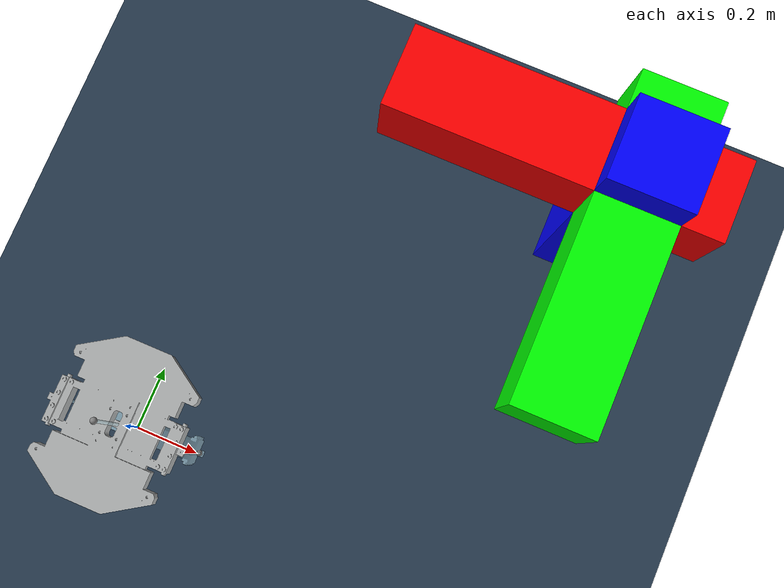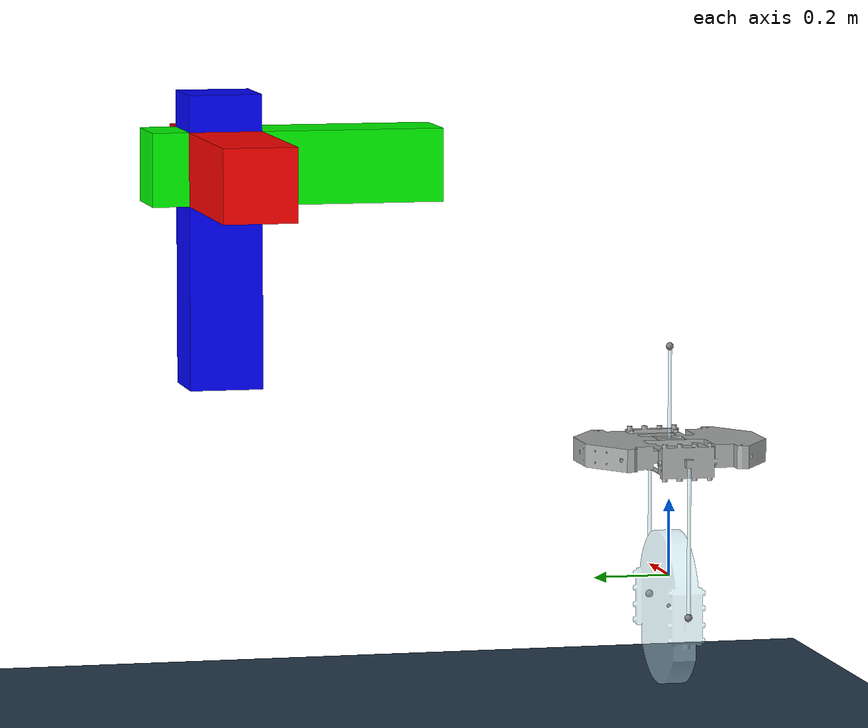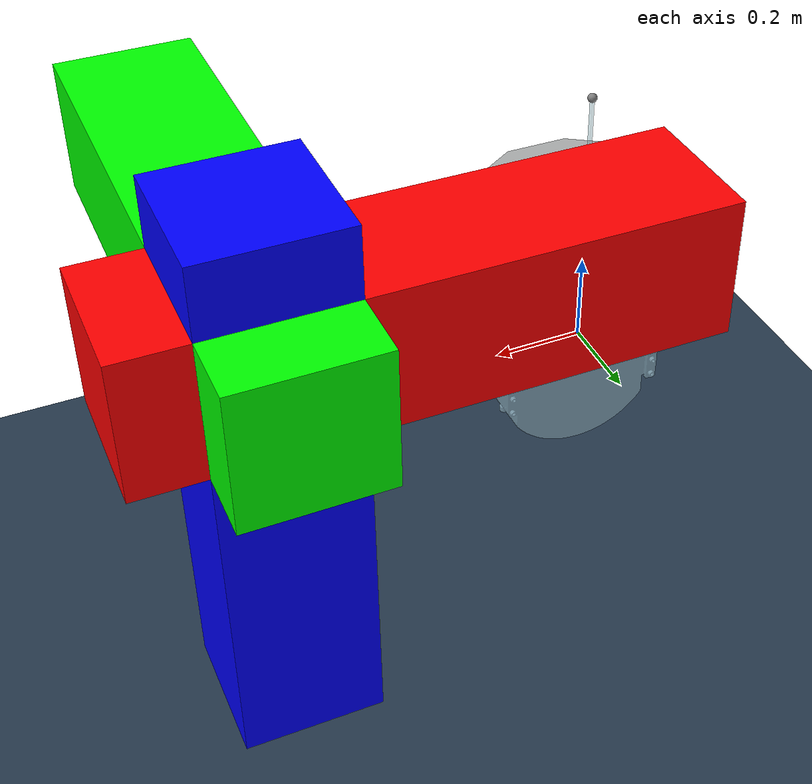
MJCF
<mujoco>

  <option timestep=".001">
    <flag energy="enable"/>
  </option>

<!-- Parte visuale -->

  <compiler  texturedir=""/>
  <statistic meansize=".05"/>

  <visual>
    <rgba haze="0.15 0.25 0.35 1"/>
    <quality shadowsize="4096"/>
    <map stiffness="700" shadowscale="0.5" fogstart="1" fogend="15" zfar="40" haze="1"/>
  </visual>

  <asset>
    <texture name="texplane" type="2d" builtin="checker" rgb1=".2 .3 .4" rgb2=".1 0.15 0.2" width="512" height="512" mark="cross" markrgb=".8 .8 .8"/>
    <material name="matplane"  texture="texplane" texrepeat="10 10" texuniform="true"/>       <!--Se vuoi il riflesso del pavimento +reflectance="0.3"+ -->

  </asset>

  <worldbody>
    <light diffuse=".4 .4 .4" specular="0.1 0.1 0.1" pos="0 0 2.0" dir="0 0 -1" castshadow="false"/>
    <light directional="true" diffuse=".8 .8 .8" specular="0.2 0.2 0.2" pos="0 0 4" dir="0 0 -1"/>
    <geom name="ground" type="plane" size="0 0 1" pos="0 0 -0.5" quat="1 0 0 0" material="matplane" condim="1"/>
  </worldbody>

<!-- Finita parte visuale  -->

<!-- Finita parte prove  -->

  <asset>
    <material name="reflectance" reflectance="1"/>             <!-- caratteristiche -->
    <material name="wire_mat" rgba="0.8 0.8 0.8 1"/>

    <!-- CAMBIARE IL PATH DEI FILE STL -->

    <mesh name="specchio" file="STL/Specchio2.stl" scale="0.002 0.002 0.002" />                        <!-- Specchio collegamento al file STL -->
    <mesh name="Marionetta" file="STL/Marionetta.stl" scale="0.002 0.002 0.002" />                     <!-- Marionetta collegamento al file STL -->

  </asset>

  <option gravity="0 0 -9.81" viscosity="0.00002"/>             <!-- Parametri fisici -->

  <worldbody>
    <light name="light" pos="0 0 1"/>                           <!-- Luce -->
    <camera name="fixed" pos="0 -1.3 .5" xyaxes="1 0 0 0 1 2"/> <!-- Telecamera -->
    <site name="anchorP" pos="0 0 0.6"  size="0.01"/>           <!-- Ancora soffitto-->

  <!-- Specchio che si muove e riflette -->
    <body name="mirror" pos="0 0 -0.08">
      <joint name="freeS" type="free"/>
      <geom type="mesh" mesh="specchio"   pos="0 0 -0.37" density="2500" rgba="0.8 0.96 1 0.5" size=".2" euler="90 270 0" />            <!--Centro di massa si trova verso il 2 buco (-0.37), ma non stai considerando i pasetti e tutto-->
      <site name="hookSSx" pos="-.2 0 0" size=".01"/>                                                                 <!-- L'attacco si trova a -0.3455 -->
      <site name="hookSDx" pos=".2 0 0" size=".01"/>
      <inertial pos="0 0 0" mass="0.1" diaginertia="0.1 0.1 0.1" />
      <site name="sensor_mirror" pos="0 -0.030 0" rgba="1 0 0 0.3" size="0.001 0.001 0.001" type="box"/>
      <site name="IMU"/>
    </body>

  <!-- Marionetta che si muove -->

   <body name="marionetta" pos="0 0 -0.08 ">
      <joint name="freeM" type="free"/>
      <geom type="mesh" mesh="Marionetta"  size= "0.2" pos="0 0 -0.325" density="2700"  euler="90 90 0" rgba="0.67 0.68 0.68 1"/>
      <site name="hookMSx" pos="-.2 0 .4" size=".01"/>                                                                 <!-- L'attacco sx si trova a -0.325 -->
      <site name="hookMDx" pos=".2 0 .4" size=".01"/>                                                                  <!--attacco dx-->
      <site name="hook_P" pos="0 0 0.375" size=".01"/>                                                           <!-- Attacco tra cavo e marionetta che puo essere modificato( 0.375 z [mm] valore piu basso)-->
      <inertial pos="0 0 0" mass="0.1" diaginertia="0.1 0.1 0.1" />
      <site name="sensor_marionetta" pos="0 -0.030 0" rgba="1 0 0 0.3" size="0.001 0.001 0.001" type="box"/>
      <site name="IMUM"/>

    </body>

  </worldbody>

<!-- PER VEDERE GLI ASSI CARTESIANI https://mujoco.readthedocs.io/en/latest/programming/samples.html#sasimulate -->

  <worldbody>
    <body name="x" pos="0.8 1 1">
        <geom name="x" type="box" size="0.4 0.1 0.1" pos="0 0 0" rgba="1 0 0 1"/>
    </body>
    <body name="y" pos="1 0.8 1">
      <geom name="y" type="box" size="0.1 0.4 0.1" pos="0 0 0" rgba="0 1 0 1"/>
    </body>
    <body name="z" pos="1 1 0.8">
    <geom name="z" type="box" size="0.1 0.1 0.4" pos="0 0 0" rgba="0 0 1 1"/>
    </body>
  </worldbody>

  <tendon><!--collegamento lato dx specchio-marionetta-->
    <spatial name="wire1" limited="true" range="0 .4" width="0.005" damping="5e-8" rgba="0.8 0.96 1 0.5">                   <!-- lunghezza reale del filo 200mm (formula scritta sotto)-->
      <site site="hookMSx"/>
      <site site="hookSSx"/>
    </spatial>
  </tendon>

  <tendon> <!--collegamento lato sx specchio-marionetta-->
    <spatial name="wire2" limited="true" range="0 .4" width="0.005" damping="5e-8" rgba="0.8 0.96 1 0.5">                   <!-- lunghezza reale del filo 200mm (formula scritta sotto)-->
      <site site="hookMDx"/>
      <site site="hookSDx"/>
    </spatial>
  </tendon>

  <tendon><!-- collegamento soffitto-marionetta-->
    <spatial name="CavoPrincipale" limited="true"  range= "0 0.305" width="0.005" damping="5e-5" rgba="0.8 0.96 1 0.5" >         <!-- rapporto lunghezza:  lunghezza simulatore(mm) = lunghezza vera(mm) * 0.002 (su ogni asse)-->
      <site site="anchorP"/>                                                                                            <!-- Lunghezza del filo puo essere definita come (punto_anchor - punto_hook)-->
      <site site="hook_P"/>                                                                                             <!-- NB! Punto_hook = posizione_oggetto(che ha l'hook) + posizione_hook(rispetto all'oggetto)  -->
    </spatial>
  </tendon>

  <sensor>
    <force name = "force_mirror" site="sensor_mirror" />
    <force name = "force_marionetta" site="sensor_marionetta" />
  </sensor>

</mujoco>
